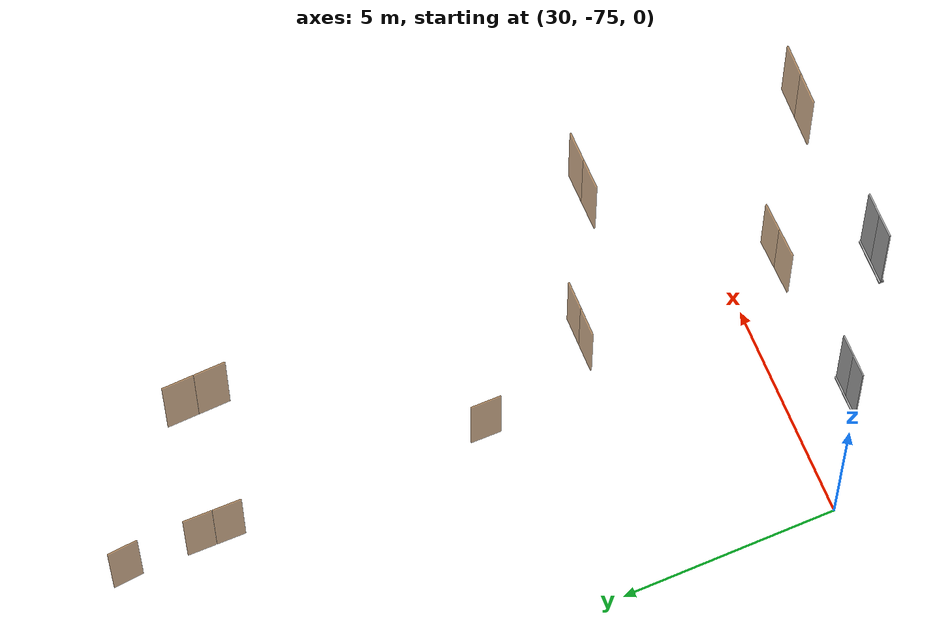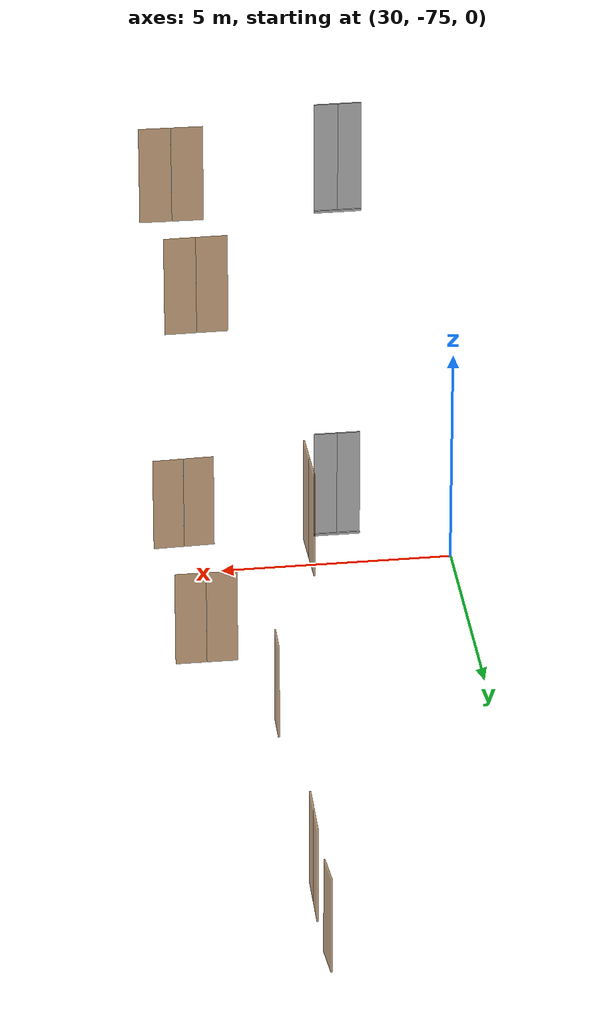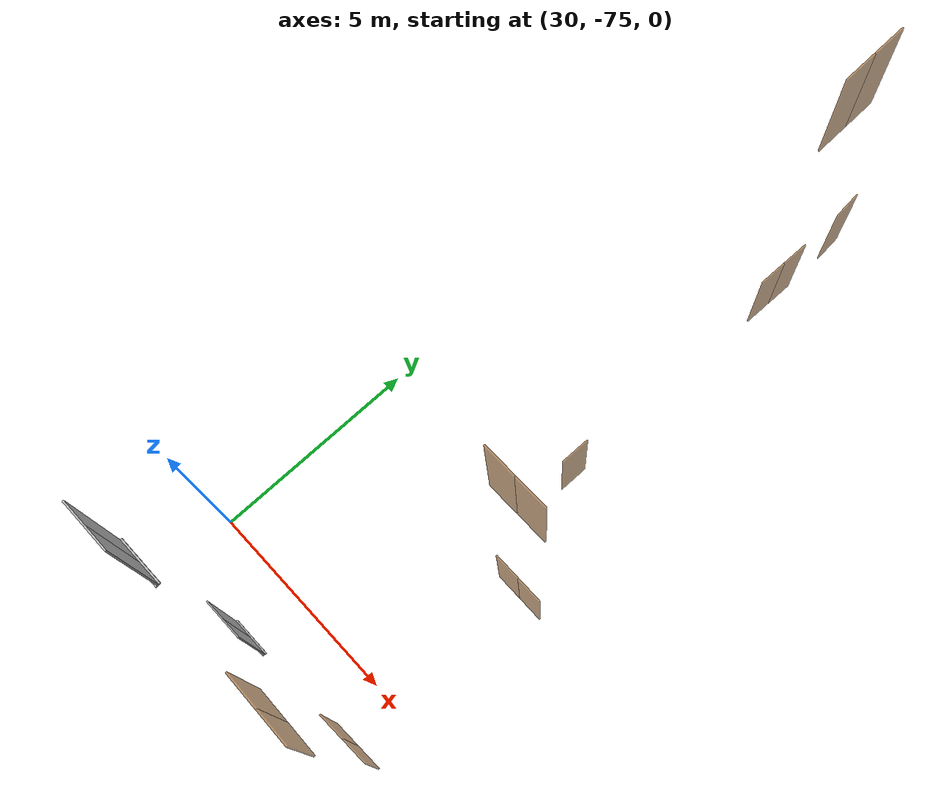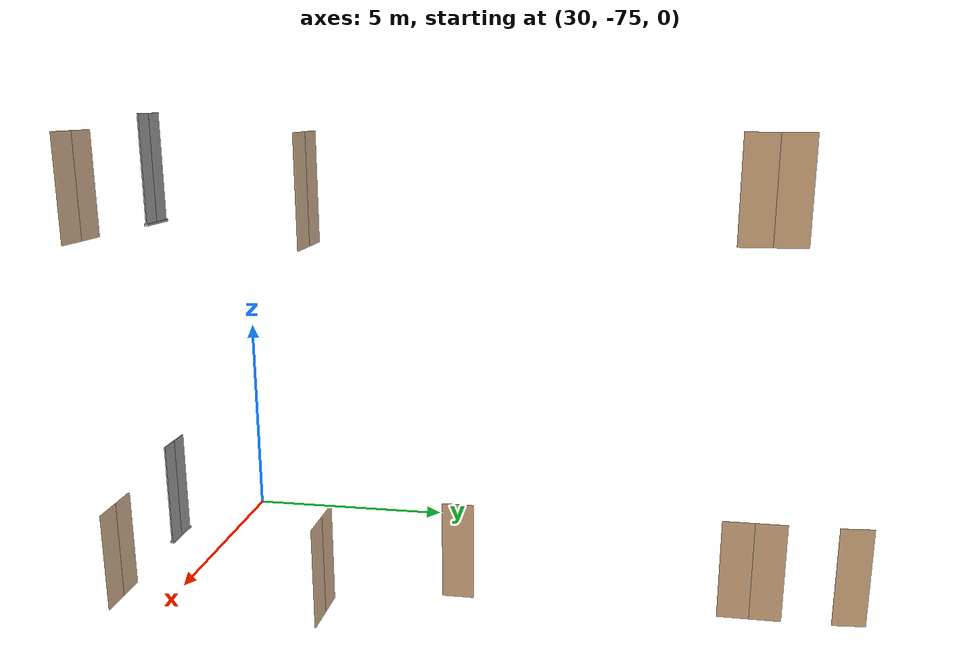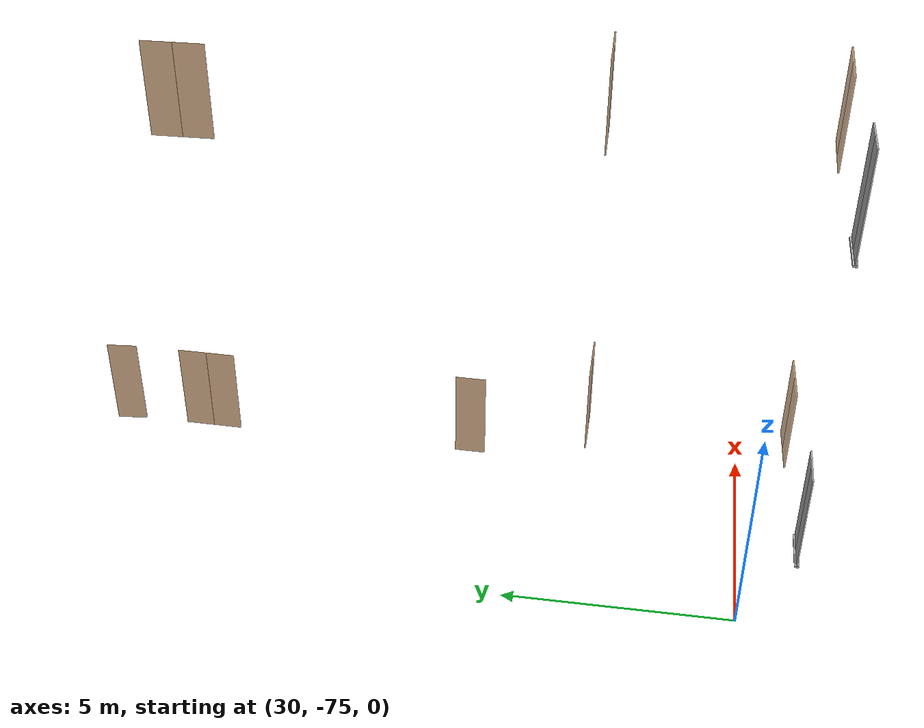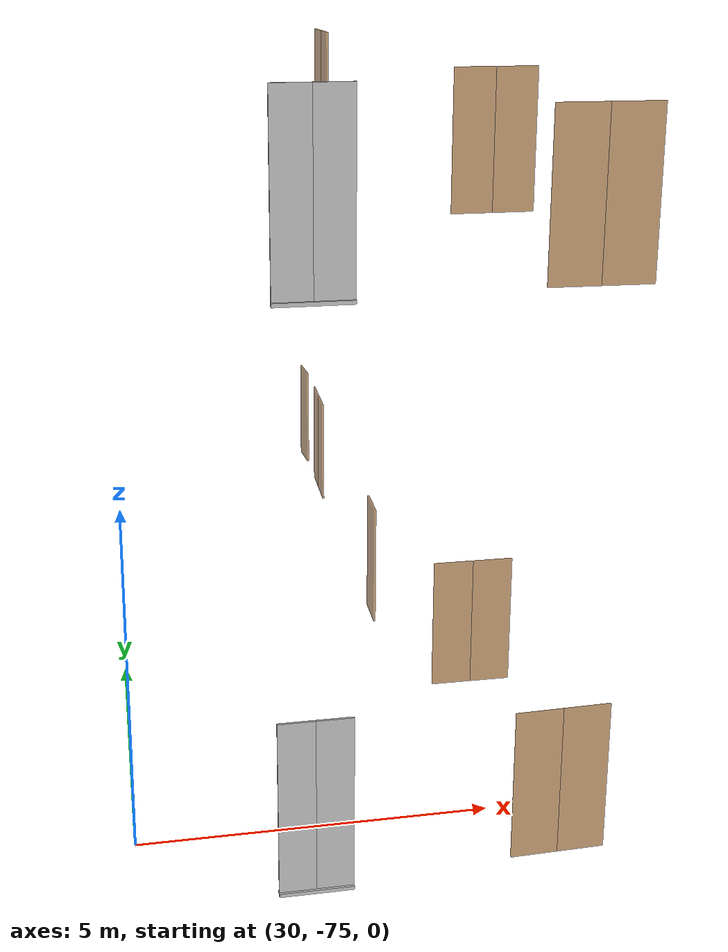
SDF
<sdf version="1.7">
 <world name="sim_world">
  <model name="TD1011AL">
   <pose>35.694736283854354 -76.12425568237657 0.0 0 0 0.03052550844454736</pose>
   <link name="right">
    <pose>0.333686512071335 0 1.11 0 0 0</pose>
    <visual name="right_visual">
     <geometry><box><size>0.65737302414267 0.03 2.2</size></box></geometry>
     <material>
      <ambient>0.5 0.25 0 0.6</ambient>
      <diffuse>0.5 0.25 0 0.6</diffuse>
      <pbr><metal><metalness>0.0</metalness></metal></pbr>
     </material>
    </visual>
    <collision name="right_collision">
     <geometry><box><size>0.65737302414267 0.03 2.2</size></box></geometry>
     <surface><contact><collide_bitmask>0x02</collide_bitmask></contact></surface>
    </collision>
    <inertial>
     <mass>50.0</mass>
     <inertia><ixx>20.17041666666667</ixx><iyy>21.967247053627002</iyy><izz>1.8043303869603309</izz></inertia>
    </inertial>
   </link>
   <joint name="right_joint" type="revolute">
    <parent>world</parent>
    <child>right</child>
    <axis><xyz>0 0 -1</xyz><limit><lower>0</lower><upper>1.57</upper></limit></axis>
    <pose>0.333686512071335 0 0 0 0 0</pose>
   </joint>
   <link name="left">
    <pose>-0.333686512071335 0 1.11 0 0 0</pose>
    <visual name="left_visual">
     <geometry><box><size>0.65737302414267 0.03 2.2</size></box></geometry>
     <material>
      <ambient>0.5 0.25 0 0.6</ambient>
      <diffuse>0.5 0.25 0 0.6</diffuse>
      <pbr><metal><metalness>0.0</metalness></metal></pbr>
     </material>
    </visual>
    <collision name="left_collision">
     <geometry><box><size>0.65737302414267 0.03 2.2</size></box></geometry>
     <surface><contact><collide_bitmask>0x02</collide_bitmask></contact></surface>
    </collision>
    <inertial>
     <mass>50.0</mass>
     <inertia><ixx>20.17041666666667</ixx><iyy>21.967247053627002</iyy><izz>1.8043303869603309</izz></inertia>
    </inertial>
   </link>
   <joint name="left_joint" type="revolute">
    <parent>world</parent>
    <child>left</child>
    <axis><xyz>0 0 -1</xyz><limit><lower>-1.57</lower><upper>0</upper></limit></axis>
    <pose>-0.333686512071335 0 0 0 0 0</pose>
   </joint>
   <plugin name="register_component" filename="libregister_component.so">
    <component name="Door">
     <v_max_door>0.5</v_max_door>
     <a_max_door>0.3</a_max_door>
     <a_nom_door>0.15</a_nom_door>
     <dx_min_door>0.01</dx_min_door>
     <f_max_door>500.0</f_max_door>
     <ros_interface>true</ros_interface>
     <door name="TD1011AL" type="DoubleSwingDoor" left_joint_name="left_joint" right_joint_name="right_joint"/>
    </component>
   </plugin>
  </model>
  <model name="TD1010AL2">
   <pose>35.71148017144721 -71.4268769761182 0.0 0 0 3.1356810753236894</pose>
   <link name="right">
    <pose>0.3312699130296567 0 1.11 0 0 0</pose>
    <visual name="right_visual">
     <geometry><box><size>0.6525398260593134 0.03 2.2</size></box></geometry>
     <material>
      <ambient>0.5 0.25 0 0.6</ambient>
      <diffuse>0.5 0.25 0 0.6</diffuse>
      <pbr><metal><metalness>0.0</metalness></metal></pbr>
     </material>
    </visual>
    <collision name="right_collision">
     <geometry><box><size>0.6525398260593134 0.03 2.2</size></box></geometry>
     <surface><contact><collide_bitmask>0x02</collide_bitmask></contact></surface>
    </collision>
    <inertial>
     <mass>50.0</mass>
     <inertia><ixx>20.17041666666667</ixx><iyy>21.940867602473</iyy><izz>1.7779509358063292</izz></inertia>
    </inertial>
   </link>
   <joint name="right_joint" type="revolute">
    <parent>world</parent>
    <child>right</child>
    <axis><xyz>0 0 -1</xyz><limit><lower>0</lower><upper>1.57</upper></limit></axis>
    <pose>0.3312699130296567 0 0 0 0 0</pose>
   </joint>
   <link name="left">
    <pose>-0.3312699130296567 0 1.11 0 0 0</pose>
    <visual name="left_visual">
     <geometry><box><size>0.6525398260593134 0.03 2.2</size></box></geometry>
     <material>
      <ambient>0.5 0.25 0 0.6</ambient>
      <diffuse>0.5 0.25 0 0.6</diffuse>
      <pbr><metal><metalness>0.0</metalness></metal></pbr>
     </material>
    </visual>
    <collision name="left_collision">
     <geometry><box><size>0.6525398260593134 0.03 2.2</size></box></geometry>
     <surface><contact><collide_bitmask>0x02</collide_bitmask></contact></surface>
    </collision>
    <inertial>
     <mass>50.0</mass>
     <inertia><ixx>20.17041666666667</ixx><iyy>21.940867602473</iyy><izz>1.7779509358063292</izz></inertia>
    </inertial>
   </link>
   <joint name="left_joint" type="revolute">
    <parent>world</parent>
    <child>left</child>
    <axis><xyz>0 0 -1</xyz><limit><lower>-1.57</lower><upper>0</upper></limit></axis>
    <pose>-0.3312699130296567 0 0 0 0 0</pose>
   </joint>
   <plugin name="register_component" filename="libregister_component.so">
    <component name="Door">
     <v_max_door>0.5</v_max_door>
     <a_max_door>0.3</a_max_door>
     <a_nom_door>0.15</a_nom_door>
     <dx_min_door>0.01</dx_min_door>
     <f_max_door>500.0</f_max_door>
     <ros_interface>true</ros_interface>
     <door name="TD1010AL2" type="DoubleSwingDoor" left_joint_name="left_joint" right_joint_name="right_joint"/>
    </component>
   </plugin>
  </model>
  <model name="TN4">
   <pose>34.54322367116888 -68.6983190900599 0.0 0 0 1.5597866738195798</pose>
   <link name="right">
    <pose>0 0 1.11 0 0 0</pose>
    <visual name="right_visual">
     <geometry><box><size>0.7035438381815191 0.03 2.2</size></box></geometry>
     <material>
      <ambient>0.5 0.25 0 0.6</ambient>
      <diffuse>0.5 0.25 0 0.6</diffuse>
      <pbr><metal><metalness>0.0</metalness></metal></pbr>
     </material>
    </visual>
    <collision name="right_collision">
     <geometry><box><size>0.7035438381815191 0.03 2.2</size></box></geometry>
     <surface><contact><collide_bitmask>0x02</collide_bitmask></contact></surface>
    </collision>
    <inertial>
     <mass>50.0</mass>
     <inertia><ixx>20.17041666666667</ixx><iyy>22.229058051013272</iyy><izz>2.066141384346598</izz></inertia>
    </inertial>
   </link>
   <joint name="right_joint" type="revolute">
    <parent>world</parent>
    <child>right</child>
    <axis><xyz>0 0 1</xyz><limit><lower>0</lower><upper>1.57</upper></limit></axis>
    <pose>0.35677191909075956 0 0 0 0 0</pose>
   </joint>
   <plugin name="register_component" filename="libregister_component.so">
    <component name="Door">
     <v_max_door>0.5</v_max_door>
     <a_max_door>0.3</a_max_door>
     <a_nom_door>0.15</a_nom_door>
     <dx_min_door>0.01</dx_min_door>
     <f_max_door>500.0</f_max_door>
     <ros_interface>true</ros_interface>
     <door name="TN4" type="SwingDoor" left_joint_name="empty_joint" right_joint_name="right_joint"/>
    </component>
   </plugin>
  </model>
  <model name="TD1008AL">
   <pose>34.56893429213082 -62.36942136352812 0.0 0 0 1.5568159788755287</pose>
   <link name="right">
    <pose>0.338361719504987 0 1.11 0 0 0</pose>
    <visual name="right_visual">
     <geometry><box><size>0.666723439009974 0.03 2.2</size></box></geometry>
     <material>
      <ambient>0.5 0.25 0 0.6</ambient>
      <diffuse>0.5 0.25 0 0.6</diffuse>
      <pbr><metal><metalness>0.0</metalness></metal></pbr>
     </material>
    </visual>
    <collision name="right_collision">
     <geometry><box><size>0.666723439009974 0.03 2.2</size></box></geometry>
     <surface><contact><collide_bitmask>0x02</collide_bitmask></contact></surface>
    </collision>
    <inertial>
     <mass>50.0</mass>
     <inertia><ixx>20.17041666666667</ixx><iyy>22.018833933855365</iyy><izz>1.8559172671886939</izz></inertia>
    </inertial>
   </link>
   <joint name="right_joint" type="revolute">
    <parent>world</parent>
    <child>right</child>
    <axis><xyz>0 0 -1</xyz><limit><lower>0</lower><upper>1.57</upper></limit></axis>
    <pose>0.338361719504987 0 0 0 0 0</pose>
   </joint>
   <link name="left">
    <pose>-0.338361719504987 0 1.11 0 0 0</pose>
    <visual name="left_visual">
     <geometry><box><size>0.666723439009974 0.03 2.2</size></box></geometry>
     <material>
      <ambient>0.5 0.25 0 0.6</ambient>
      <diffuse>0.5 0.25 0 0.6</diffuse>
      <pbr><metal><metalness>0.0</metalness></metal></pbr>
     </material>
    </visual>
    <collision name="left_collision">
     <geometry><box><size>0.666723439009974 0.03 2.2</size></box></geometry>
     <surface><contact><collide_bitmask>0x02</collide_bitmask></contact></surface>
    </collision>
    <inertial>
     <mass>50.0</mass>
     <inertia><ixx>20.17041666666667</ixx><iyy>22.018833933855365</iyy><izz>1.8559172671886939</izz></inertia>
    </inertial>
   </link>
   <joint name="left_joint" type="revolute">
    <parent>world</parent>
    <child>left</child>
    <axis><xyz>0 0 -1</xyz><limit><lower>-1.57</lower><upper>0</upper></limit></axis>
    <pose>-0.338361719504987 0 0 0 0 0</pose>
   </joint>
   <plugin name="register_component" filename="libregister_component.so">
    <component name="Door">
     <v_max_door>0.5</v_max_door>
     <a_max_door>0.3</a_max_door>
     <a_nom_door>0.15</a_nom_door>
     <dx_min_door>0.01</dx_min_door>
     <f_max_door>500.0</f_max_door>
     <ros_interface>true</ros_interface>
     <door name="TD1008AL" type="DoubleSwingDoor" left_joint_name="left_joint" right_joint_name="right_joint"/>
    </component>
   </plugin>
  </model>
  <model name="TN2">
   <pose>34.550013250253116 -60.30635445217207 0.0 0 0 -1.4909927351613321</pose>
   <link name="right">
    <pose>0 0 1.11 0 0 0</pose>
    <visual name="right_visual">
     <geometry><box><size>0.7020408952186347 0.03 2.2</size></box></geometry>
     <material>
      <ambient>0.5 0.25 0 0.6</ambient>
      <diffuse>0.5 0.25 0 0.6</diffuse>
      <pbr><metal><metalness>0.0</metalness></metal></pbr>
     </material>
    </visual>
    <collision name="right_collision">
     <geometry><box><size>0.7020408952186347 0.03 2.2</size></box></geometry>
     <surface><contact><collide_bitmask>0x02</collide_bitmask></contact></surface>
    </collision>
    <inertial>
     <mass>50.0</mass>
     <inertia><ixx>20.17041666666667</ixx><iyy>22.220255910664097</iyy><izz>2.057339243997425</izz></inertia>
    </inertial>
   </link>
   <joint name="right_joint" type="revolute">
    <parent>world</parent>
    <child>right</child>
    <axis><xyz>0 0 -1</xyz><limit><lower>0</lower><upper>1.57</upper></limit></axis>
    <pose>0.35602044760931734 0 0 0 0 0</pose>
   </joint>
   <plugin name="register_component" filename="libregister_component.so">
    <component name="Door">
     <v_max_door>0.5</v_max_door>
     <a_max_door>0.3</a_max_door>
     <a_nom_door>0.15</a_nom_door>
     <dx_min_door>0.01</dx_min_door>
     <f_max_door>500.0</f_max_door>
     <ros_interface>true</ros_interface>
     <door name="TN2" type="SwingDoor" left_joint_name="empty_joint" right_joint_name="right_joint"/>
    </component>
   </plugin>
  </model>
  <model name="TD1108AL2">
   <pose>35.858100892995125 -76.21378531045255 8.0 0 0 -0.021554127307024953</pose>
   <link name="right">
    <pose>0.33956049363497615 0 1.11 0 0 0</pose>
    <visual name="right_visual">
     <geometry><box><size>0.6691209872699523 0.03 2.2</size></box></geometry>
     <material>
      <ambient>0.5 0.25 0 0.6</ambient>
      <diffuse>0.5 0.25 0 0.6</diffuse>
      <pbr><metal><metalness>0.0</metalness></metal></pbr>
     </material>
    </visual>
    <collision name="right_collision">
     <geometry><box><size>0.6691209872699523 0.03 2.2</size></box></geometry>
     <surface><contact><collide_bitmask>0x02</collide_bitmask></contact></surface>
    </collision>
    <inertial>
     <mass>50.0</mass>
     <inertia><ixx>20.17041666666667</ixx><iyy>22.03217873168799</iyy><izz>1.8692620650213154</izz></inertia>
    </inertial>
   </link>
   <joint name="right_joint" type="revolute">
    <parent>world</parent>
    <child>right</child>
    <axis><xyz>0 0 -1</xyz><limit><lower>0</lower><upper>1.57</upper></limit></axis>
    <pose>0.33956049363497615 0 0 0 0 0</pose>
   </joint>
   <link name="left">
    <pose>-0.33956049363497615 0 1.11 0 0 0</pose>
    <visual name="left_visual">
     <geometry><box><size>0.6691209872699523 0.03 2.2</size></box></geometry>
     <material>
      <ambient>0.5 0.25 0 0.6</ambient>
      <diffuse>0.5 0.25 0 0.6</diffuse>
      <pbr><metal><metalness>0.0</metalness></metal></pbr>
     </material>
    </visual>
    <collision name="left_collision">
     <geometry><box><size>0.6691209872699523 0.03 2.2</size></box></geometry>
     <surface><contact><collide_bitmask>0x02</collide_bitmask></contact></surface>
    </collision>
    <inertial>
     <mass>50.0</mass>
     <inertia><ixx>20.17041666666667</ixx><iyy>22.03217873168799</iyy><izz>1.8692620650213154</izz></inertia>
    </inertial>
   </link>
   <joint name="left_joint" type="revolute">
    <parent>world</parent>
    <child>left</child>
    <axis><xyz>0 0 -1</xyz><limit><lower>-1.57</lower><upper>0</upper></limit></axis>
    <pose>-0.33956049363497615 0 0 0 0 0</pose>
   </joint>
   <plugin name="register_component" filename="libregister_component.so">
    <component name="Door">
     <v_max_door>0.5</v_max_door>
     <a_max_door>0.3</a_max_door>
     <a_nom_door>0.15</a_nom_door>
     <dx_min_door>0.01</dx_min_door>
     <f_max_door>500.0</f_max_door>
     <ros_interface>true</ros_interface>
     <door name="TD1108AL2" type="DoubleSwingDoor" left_joint_name="left_joint" right_joint_name="right_joint"/>
    </component>
   </plugin>
  </model>
  <model name="TD1107AL2">
   <pose>35.85232358607331 -71.40206245660406 8.0 0 0 -3.1338843591328</pose>
   <link name="right">
    <pose>0.3271891199038359 0 1.11 0 0 0</pose>
    <visual name="right_visual">
     <geometry><box><size>0.6443782398076718 0.03 2.2</size></box></geometry>
     <material>
      <ambient>0.5 0.25 0 0.6</ambient>
      <diffuse>0.5 0.25 0 0.6</diffuse>
      <pbr><metal><metalness>0.0</metalness></metal></pbr>
     </material>
    </visual>
    <collision name="right_collision">
     <geometry><box><size>0.6443782398076718 0.03 2.2</size></box></geometry>
     <surface><contact><collide_bitmask>0x02</collide_bitmask></contact></surface>
    </collision>
    <inertial>
     <mass>50.0</mass>
     <inertia><ixx>20.17041666666667</ixx><iyy>21.89676381640681</iyy><izz>1.7338471497401395</izz></inertia>
    </inertial>
   </link>
   <joint name="right_joint" type="revolute">
    <parent>world</parent>
    <child>right</child>
    <axis><xyz>0 0 -1</xyz><limit><lower>0</lower><upper>1.57</upper></limit></axis>
    <pose>0.3271891199038359 0 0 0 0 0</pose>
   </joint>
   <link name="left">
    <pose>-0.3271891199038359 0 1.11 0 0 0</pose>
    <visual name="left_visual">
     <geometry><box><size>0.6443782398076718 0.03 2.2</size></box></geometry>
     <material>
      <ambient>0.5 0.25 0 0.6</ambient>
      <diffuse>0.5 0.25 0 0.6</diffuse>
      <pbr><metal><metalness>0.0</metalness></metal></pbr>
     </material>
    </visual>
    <collision name="left_collision">
     <geometry><box><size>0.6443782398076718 0.03 2.2</size></box></geometry>
     <surface><contact><collide_bitmask>0x02</collide_bitmask></contact></surface>
    </collision>
    <inertial>
     <mass>50.0</mass>
     <inertia><ixx>20.17041666666667</ixx><iyy>21.89676381640681</iyy><izz>1.7338471497401395</izz></inertia>
    </inertial>
   </link>
   <joint name="left_joint" type="revolute">
    <parent>world</parent>
    <child>left</child>
    <axis><xyz>0 0 -1</xyz><limit><lower>-1.57</lower><upper>0</upper></limit></axis>
    <pose>-0.3271891199038359 0 0 0 0 0</pose>
   </joint>
   <plugin name="register_component" filename="libregister_component.so">
    <component name="Door">
     <v_max_door>0.5</v_max_door>
     <a_max_door>0.3</a_max_door>
     <a_nom_door>0.15</a_nom_door>
     <dx_min_door>0.01</dx_min_door>
     <f_max_door>500.0</f_max_door>
     <ros_interface>true</ros_interface>
     <door name="TD1107AL2" type="DoubleSwingDoor" left_joint_name="left_joint" right_joint_name="right_joint"/>
    </component>
   </plugin>
  </model>
  <model name="TD1107AL1">
   <pose>34.64926711548466 -62.428015983598065 8.0 0 0 1.5958340804097362</pose>
   <link name="right">
    <pose>0.3451872536102721 0 1.11 0 0 0</pose>
    <visual name="right_visual">
     <geometry><box><size>0.6803745072205442 0.03 2.2</size></box></geometry>
     <material>
      <ambient>0.5 0.25 0 0.6</ambient>
      <diffuse>0.5 0.25 0 0.6</diffuse>
      <pbr><metal><metalness>0.0</metalness></metal></pbr>
     </material>
    </visual>
    <collision name="right_collision">
     <geometry><box><size>0.6803745072205442 0.03 2.2</size></box></geometry>
     <surface><contact><collide_bitmask>0x02</collide_bitmask></contact></surface>
    </collision>
    <inertial>
     <mass>50.0</mass>
     <inertia><ixx>20.17041666666667</ixx><iyy>22.095456125315</iyy><izz>1.9325394586483264</izz></inertia>
    </inertial>
   </link>
   <joint name="right_joint" type="revolute">
    <parent>world</parent>
    <child>right</child>
    <axis><xyz>0 0 -1</xyz><limit><lower>0</lower><upper>1.57</upper></limit></axis>
    <pose>0.3451872536102721 0 0 0 0 0</pose>
   </joint>
   <link name="left">
    <pose>-0.3451872536102721 0 1.11 0 0 0</pose>
    <visual name="left_visual">
     <geometry><box><size>0.6803745072205442 0.03 2.2</size></box></geometry>
     <material>
      <ambient>0.5 0.25 0 0.6</ambient>
      <diffuse>0.5 0.25 0 0.6</diffuse>
      <pbr><metal><metalness>0.0</metalness></metal></pbr>
     </material>
    </visual>
    <collision name="left_collision">
     <geometry><box><size>0.6803745072205442 0.03 2.2</size></box></geometry>
     <surface><contact><collide_bitmask>0x02</collide_bitmask></contact></surface>
    </collision>
    <inertial>
     <mass>50.0</mass>
     <inertia><ixx>20.17041666666667</ixx><iyy>22.095456125315</iyy><izz>1.9325394586483264</izz></inertia>
    </inertial>
   </link>
   <joint name="left_joint" type="revolute">
    <parent>world</parent>
    <child>left</child>
    <axis><xyz>0 0 -1</xyz><limit><lower>-1.57</lower><upper>0</upper></limit></axis>
    <pose>-0.3451872536102721 0 0 0 0 0</pose>
   </joint>
   <plugin name="register_component" filename="libregister_component.so">
    <component name="Door">
     <v_max_door>0.5</v_max_door>
     <a_max_door>0.3</a_max_door>
     <a_nom_door>0.15</a_nom_door>
     <dx_min_door>0.01</dx_min_door>
     <f_max_door>500.0</f_max_door>
     <ros_interface>true</ros_interface>
     <door name="TD1107AL1" type="DoubleSwingDoor" left_joint_name="left_joint" right_joint_name="right_joint"/>
    </component>
   </plugin>
  </model>
  <model name="ShaftDoor_lift1td1_L1_lift1_door">
   <pose>32.320640929890104 -76.33376668522129 0.0 0 0 0.0</pose>
   <link name="right_door">
    <pose>0.25 0 1.25 0 0 0</pose>
    <visual name="right_door_visual">
     <geometry><box><size>0.5 0.03 2.5</size></box></geometry>
     <material>
      <ambient>0.5 0.5 0.5 1</ambient>
      <diffuse>0.7 0.7 0.7 1</diffuse>
      <specular>0.6 0.6 0.6 1</specular>
      <emissive>0.1 0.1 0.1 1</emissive>
     </material>
    </visual>
    <collision name="right_door_collision">
     <geometry><box><size>0.5 0.03 2.5</size></box></geometry>
     <surface><contact><collide_bitmask>0x02</collide_bitmask></contact></surface>
    </collision>
   </link>
   <link name="left_door">
    <pose>-0.25 0 1.25 0 0 0</pose>
    <visual name="left_door_visual">
     <geometry><box><size>0.5 0.03 2.5</size></box></geometry>
     <material>
      <ambient>0.5 0.5 0.5 1</ambient>
      <diffuse>0.7 0.7 0.7 1</diffuse>
      <specular>0.6 0.6 0.6 1</specular>
      <emissive>0.1 0.1 0.1 1</emissive>
     </material>
    </visual>
    <collision name="left_door_collision">
     <geometry><box><size>0.5 0.03 2.5</size></box></geometry>
     <surface><contact><collide_bitmask>0x02</collide_bitmask></contact></surface>
    </collision>
   </link>
   <joint name="right_joint" type="prismatic">
    <parent>world</parent>
    <child>right_door</child>
    <axis><xyz>1 0 0</xyz><limit><lower>0</lower><upper>0.5</upper></limit></axis>
   </joint>
   <joint name="left_joint" type="prismatic">
    <parent>world</parent>
    <child>left_door</child>
    <axis><xyz>1 0 0</xyz><limit><lower>-0.5</lower><upper>0</upper></limit></axis>
   </joint>
   <link name="ramp">
    <pose>0 0 -0.025 0 0 0</pose>
    <visual name="ramp_visual">
     <geometry><box><size>1.0 0.1 0.05</size></box></geometry>
     <material>
      <ambient>0.5 0.5 0.5 1</ambient>
      <diffuse>0.7 0.7 0.7 1</diffuse>
      <specular>0.6 0.6 0.6 1</specular>
      <emissive>0.1 0.1 0.1 1</emissive>
     </material>
    </visual>
    <collision name="ramp_collision">
     <geometry><box><size>1.0 0.1 0.05</size></box></geometry>
     <surface><contact><collide_bitmask>0x02</collide_bitmask></contact></surface>
    </collision>
   </link>
   <joint name="ramp_joint" type="fixed"><parent>world</parent><child>ramp</child></joint>
   <plugin name="register_component" filename="libregister_component.so">
    <component name="Door">
     <v_max_door>0.3</v_max_door>
     <a_max_door>0.2</a_max_door>
     <a_nom_door>0.1</a_nom_door>
     <dx_min_door>0.0001</dx_min_door>
     <f_max_door>35.0</f_max_door>
     <door left_joint_name="left_joint" name="ShaftDoor_lift1td1_L1_lift1_door" right_joint_name="right_joint" type="DoubleSlidingDoor"/>
    </component>
   </plugin>
  </model>
  <model name="ShaftDoor_lift1td1_L2_lift1_door">
   <pose>32.320640929890104 -76.33376668522129 8.0 0 0 0.0</pose>
   <link name="right_door">
    <pose>0.25 0 1.25 0 0 0</pose>
    <visual name="right_door_visual">
     <geometry><box><size>0.5 0.03 2.5</size></box></geometry>
     <material>
      <ambient>0.5 0.5 0.5 1</ambient>
      <diffuse>0.7 0.7 0.7 1</diffuse>
      <specular>0.6 0.6 0.6 1</specular>
      <emissive>0.1 0.1 0.1 1</emissive>
     </material>
    </visual>
    <collision name="right_door_collision">
     <geometry><box><size>0.5 0.03 2.5</size></box></geometry>
     <surface><contact><collide_bitmask>0x02</collide_bitmask></contact></surface>
    </collision>
   </link>
   <link name="left_door">
    <pose>-0.25 0 1.25 0 0 0</pose>
    <visual name="left_door_visual">
     <geometry><box><size>0.5 0.03 2.5</size></box></geometry>
     <material>
      <ambient>0.5 0.5 0.5 1</ambient>
      <diffuse>0.7 0.7 0.7 1</diffuse>
      <specular>0.6 0.6 0.6 1</specular>
      <emissive>0.1 0.1 0.1 1</emissive>
     </material>
    </visual>
    <collision name="left_door_collision">
     <geometry><box><size>0.5 0.03 2.5</size></box></geometry>
     <surface><contact><collide_bitmask>0x02</collide_bitmask></contact></surface>
    </collision>
   </link>
   <joint name="right_joint" type="prismatic">
    <parent>world</parent>
    <child>right_door</child>
    <axis><xyz>1 0 0</xyz><limit><lower>0</lower><upper>0.5</upper></limit></axis>
   </joint>
   <joint name="left_joint" type="prismatic">
    <parent>world</parent>
    <child>left_door</child>
    <axis><xyz>1 0 0</xyz><limit><lower>-0.5</lower><upper>0</upper></limit></axis>
   </joint>
   <link name="ramp">
    <pose>0 0 -0.025 0 0 0</pose>
    <visual name="ramp_visual">
     <geometry><box><size>1.0 0.1 0.05</size></box></geometry>
     <material>
      <ambient>0.5 0.5 0.5 1</ambient>
      <diffuse>0.7 0.7 0.7 1</diffuse>
      <specular>0.6 0.6 0.6 1</specular>
      <emissive>0.1 0.1 0.1 1</emissive>
     </material>
    </visual>
    <collision name="ramp_collision">
     <geometry><box><size>1.0 0.1 0.05</size></box></geometry>
     <surface><contact><collide_bitmask>0x02</collide_bitmask></contact></surface>
    </collision>
   </link>
   <joint name="ramp_joint" type="fixed"><parent>world</parent><child>ramp</child></joint>
   <plugin name="register_component" filename="libregister_component.so">
    <component name="Door">
     <v_max_door>0.3</v_max_door>
     <a_max_door>0.2</a_max_door>
     <a_nom_door>0.1</a_nom_door>
     <dx_min_door>0.0001</dx_min_door>
     <f_max_door>35.0</f_max_door>
     <door left_joint_name="left_joint" name="ShaftDoor_lift1td1_L2_lift1_door" right_joint_name="right_joint" type="DoubleSlidingDoor"/>
    </component>
   </plugin>
  </model>
 </world>
</sdf>
